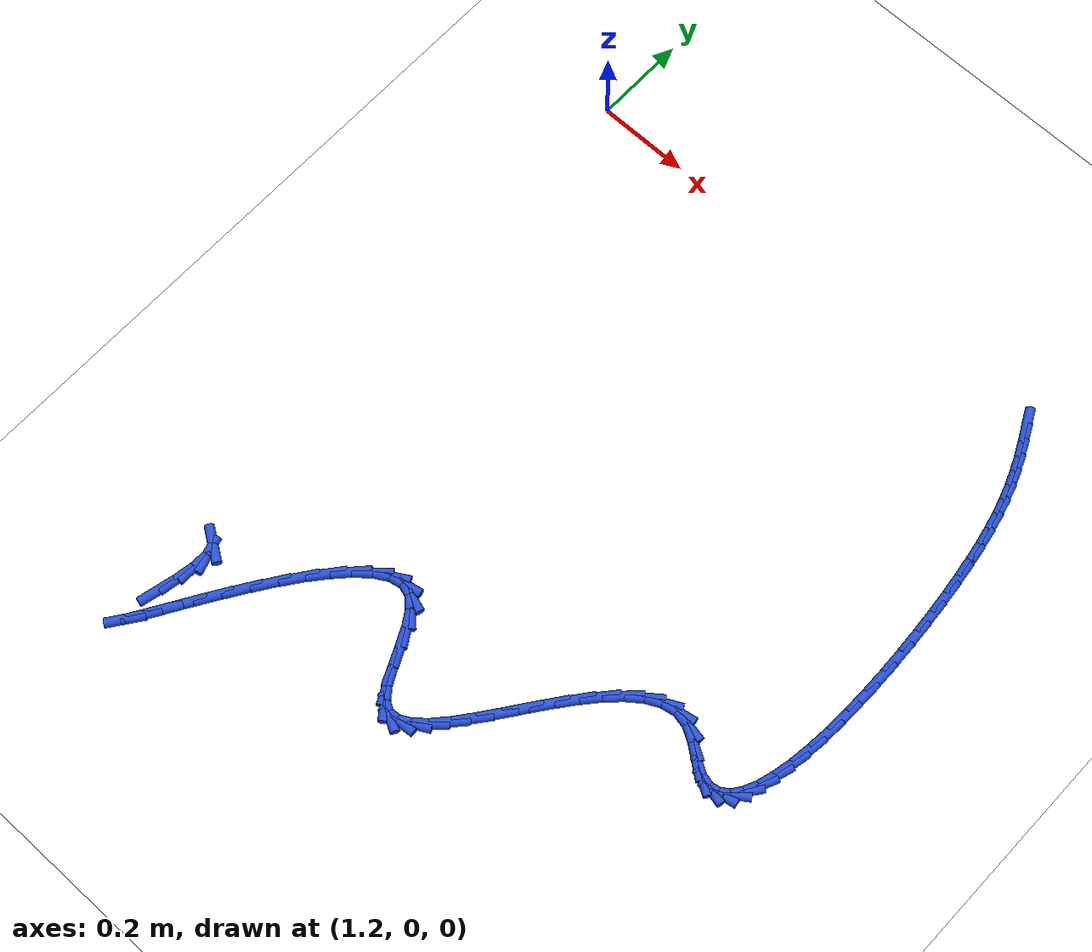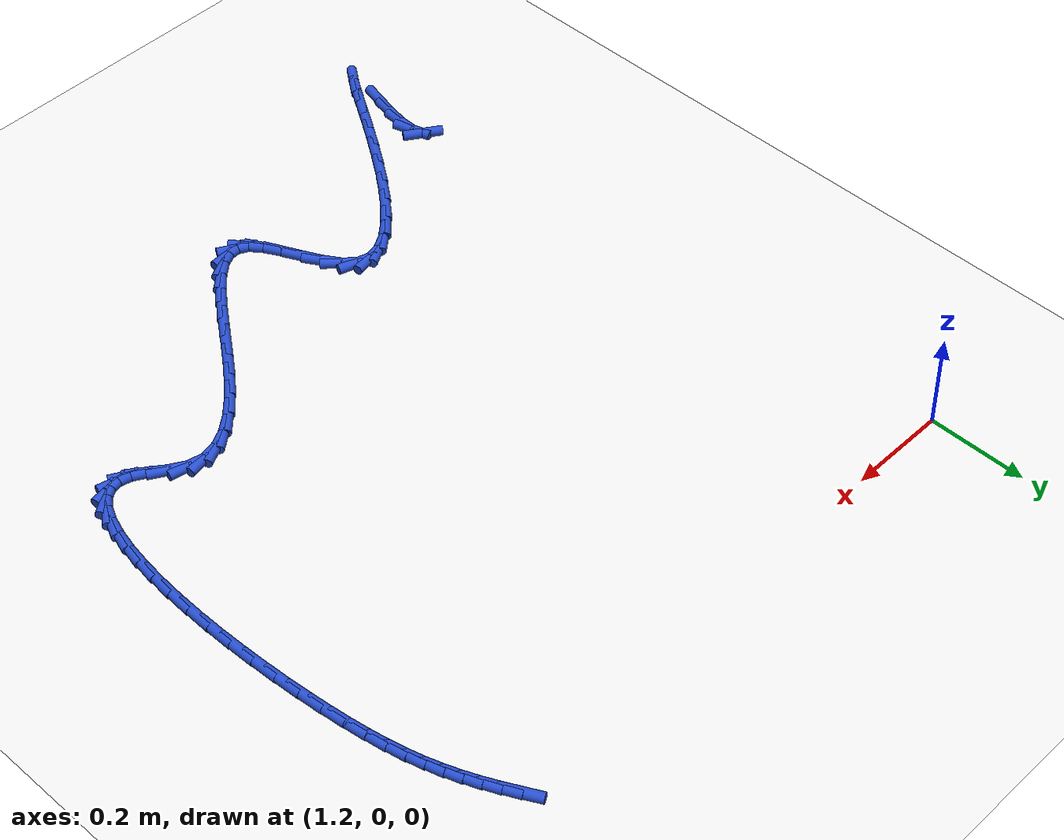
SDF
<sdf version="1.6">
 <world name="default">
  <model name="ground_plane">
   <static>1</static>
   <link name="link">
    <collision name="collision">
     <geometry><plane><normal>0 0 1</normal><size>100 100</size></plane></geometry>
     <surface><friction><ode><mu>100</mu><mu2>50</mu2></ode></friction></surface>
    </collision>
    <visual name="visual">
     <cast_shadows>0</cast_shadows>
     <geometry><plane><normal>0 0 1</normal><size>100 100</size></plane></geometry>
     <material>
      <script><uri>file://media/materials/scripts/gazebo.material</uri><name>Gazebo/WhiteGlow</name></script>
     </material>
    </visual>
   </link>
  </model>
  <model name="line">
   <link name="link_141">
    <pose>2.2784514607474446 0.02813323388887385 0.01 0 1.57 -1.0860343910763162</pose>
    <collision name="collision">
     <geometry><cylinder><radius>0.01</radius><length>0.08</length></cylinder></geometry>
    </collision>
    <visual name="visual">
     <material>
      <script><name>Gazebo/Blue</name><uri>file://media/materials/scripts/gazebo.material</uri></script>
     </material>
     <geometry><cylinder><radius>0.01</radius><length>0.08</length></cylinder></geometry>
    </visual>
   </link>
   <link name="link_142">
    <pose>2.2945918916165278 -0.0025124639639989097 0.01 0 1.57 -1.1183088455626469</pose>
    <collision name="collision">
     <geometry><cylinder><radius>0.01</radius><length>0.08</length></cylinder></geometry>
    </collision>
    <visual name="visual">
     <material>
      <script><name>Gazebo/Blue</name><uri>file://media/materials/scripts/gazebo.material</uri></script>
     </material>
     <geometry><cylinder><radius>0.01</radius><length>0.08</length></cylinder></geometry>
    </visual>
   </link>
   <link name="link_143">
    <pose>2.309053181064443 -0.032260449607028355 0.01 0 1.57 -1.1569120215775426</pose>
    <collision name="collision">
     <geometry><cylinder><radius>0.01</radius><length>0.08</length></cylinder></geometry>
    </collision>
    <visual name="visual">
     <material>
      <script><name>Gazebo/Blue</name><uri>file://media/materials/scripts/gazebo.material</uri></script>
     </material>
     <geometry><cylinder><radius>0.01</radius><length>0.08</length></cylinder></geometry>
    </visual>
   </link>
   <link name="link_144">
    <pose>2.321971667031606 -0.061670300538566064 0.01 0 1.57 -1.2002351775490423</pose>
    <collision name="collision">
     <geometry><cylinder><radius>0.01</radius><length>0.08</length></cylinder></geometry>
    </collision>
    <visual name="visual">
     <material>
      <script><name>Gazebo/Blue</name><uri>file://media/materials/scripts/gazebo.material</uri></script>
     </material>
     <geometry><cylinder><radius>0.01</radius><length>0.08</length></cylinder></geometry>
    </visual>
   </link>
   <link name="link_145">
    <pose>2.3334836874584317 -0.09130159425696374 0.01 0 1.57 -1.245957803546816</pose>
    <collision name="collision">
     <geometry><cylinder><radius>0.01</radius><length>0.08</length></cylinder></geometry>
    </collision>
    <visual name="visual">
     <material>
      <script><name>Gazebo/Blue</name><uri>file://media/materials/scripts/gazebo.material</uri></script>
     </material>
     <geometry><cylinder><radius>0.01</radius><length>0.08</length></cylinder></geometry>
    </visual>
   </link>
   <link name="link_146">
    <pose>2.343725580285333 -0.12171390826057393 0.01 0 1.57 -1.2914533725791</pose>
    <collision name="collision">
     <geometry><cylinder><radius>0.01</radius><length>0.08</length></cylinder></geometry>
    </collision>
    <visual name="visual">
     <material>
      <script><name>Gazebo/Blue</name><uri>file://media/materials/scripts/gazebo.material</uri></script>
     </material>
     <geometry><cylinder><radius>0.01</radius><length>0.08</length></cylinder></geometry>
    </visual>
   </link>
   <link name="link_147">
    <pose>2.3528336834527264 -0.15346682004774637 0.01 0 1.57 -1.3342987932334067</pose>
    <collision name="collision">
     <geometry><cylinder><radius>0.01</radius><length>0.08</length></cylinder></geometry>
    </collision>
    <visual name="visual">
     <material>
      <script><name>Gazebo/Blue</name><uri>file://media/materials/scripts/gazebo.material</uri></script>
     </material>
     <geometry><cylinder><radius>0.01</radius><length>0.08</length></cylinder></geometry>
    </visual>
   </link>
   <link name="link_148">
    <pose>2.3609443349010255 -0.18711990711683374 0.01 0 1.57 -1.3726827764626461</pose>
    <collision name="collision">
     <geometry><cylinder><radius>0.01</radius><length>0.08</length></cylinder></geometry>
    </collision>
    <visual name="visual">
     <material>
      <script><name>Gazebo/Blue</name><uri>file://media/materials/scripts/gazebo.material</uri></script>
     </material>
     <geometry><cylinder><radius>0.01</radius><length>0.08</length></cylinder></geometry>
    </visual>
   </link>
   <link name="link_149">
    <pose>2.3681938725706435 -0.22323274696618753 0.01 0 1.57 -1.405579685635747</pose>
    <collision name="collision">
     <geometry><cylinder><radius>0.01</radius><length>0.08</length></cylinder></geometry>
    </collision>
    <visual name="visual">
     <material>
      <script><name>Gazebo/Blue</name><uri>file://media/materials/scripts/gazebo.material</uri></script>
     </material>
     <geometry><cylinder><radius>0.01</radius><length>0.08</length></cylinder></geometry>
    </visual>
   </link>
   <link name="link_150">
    <pose>2.3747186344019973 -0.26236491709415943 0.01 0 1.57 -1.4327160093327058</pose>
    <collision name="collision">
     <geometry><cylinder><radius>0.01</radius><length>0.08</length></cylinder></geometry>
    </collision>
    <visual name="visual">
     <material>
      <script><name>Gazebo/Blue</name><uri>file://media/materials/scripts/gazebo.material</uri></script>
     </material>
     <geometry><cylinder><radius>0.01</radius><length>0.08</length></cylinder></geometry>
    </visual>
   </link>
   <link name="link_151">
    <pose>2.380651872147864 -0.30506094929667876 0.01 0 1.57 -1.4554205872263488</pose>
    <collision name="collision">
     <geometry><cylinder><radius>0.01</radius><length>0.08</length></cylinder></geometry>
    </collision>
    <visual name="visual">
     <material>
      <script><name>Gazebo/Blue</name><uri>file://media/materials/scripts/gazebo.material</uri></script>
     </material>
     <geometry><cylinder><radius>0.01</radius><length>0.08</length></cylinder></geometry>
    </visual>
   </link>
   <link name="link_152">
    <pose>2.3860101042327075 -0.35129628005604385 0.01 0 1.57 -1.4762206513893845</pose>
    <collision name="collision">
     <geometry><cylinder><radius>0.01</radius><length>0.08</length></cylinder></geometry>
    </collision>
    <visual name="visual">
     <material>
      <script><name>Gazebo/Blue</name><uri>file://media/materials/scripts/gazebo.material</uri></script>
     </material>
     <geometry><cylinder><radius>0.01</radius><length>0.08</length></cylinder></geometry>
    </visual>
   </link>
   <link name="link_153">
    <pose>2.39066005781618 -0.40031608734091917 0.01 0 1.57 -1.4964539882212677</pose>
    <collision name="collision">
     <geometry><cylinder><radius>0.01</radius><length>0.08</length></cylinder></geometry>
    </collision>
    <visual name="visual">
     <material>
      <script><name>Gazebo/Blue</name><uri>file://media/materials/scripts/gazebo.material</uri></script>
     </material>
     <geometry><cylinder><radius>0.01</radius><length>0.08</length></cylinder></geometry>
    </visual>
   </link>
   <link name="link_154">
    <pose>2.3944586331510402 -0.45131764123675105 0.01 0 1.57 -1.5171096242226416</pose>
    <collision name="collision">
     <geometry><cylinder><radius>0.01</radius><length>0.08</length></cylinder></geometry>
    </collision>
    <visual name="visual">
     <material>
      <script><name>Gazebo/Blue</name><uri>file://media/materials/scripts/gazebo.material</uri></script>
     </material>
     <geometry><cylinder><radius>0.01</radius><length>0.08</length></cylinder></geometry>
    </visual>
   </link>
   <link name="link_155">
    <pose>2.3972627304900476 -0.5034982118289881 0.01 0 1.57 -1.5390980579149491</pose>
    <collision name="collision">
     <geometry><cylinder><radius>0.01</radius><length>0.08</length></cylinder></geometry>
    </collision>
    <visual name="visual">
     <material>
      <script><name>Gazebo/Blue</name><uri>file://media/materials/scripts/gazebo.material</uri></script>
     </material>
     <geometry><cylinder><radius>0.01</radius><length>0.08</length></cylinder></geometry>
    </visual>
   </link>
   <link name="link_156">
    <pose>2.3989292500859607 -0.5560550692030736 0.01 0 1.57 -1.5633949841102885</pose>
    <collision name="collision">
     <geometry><cylinder><radius>0.01</radius><length>0.08</length></cylinder></geometry>
    </collision>
    <visual name="visual">
     <material>
      <script><name>Gazebo/Blue</name><uri>file://media/materials/scripts/gazebo.material</uri></script>
     </material>
     <geometry><cylinder><radius>0.01</radius><length>0.08</length></cylinder></geometry>
    </visual>
   </link>
   <link name="link_157">
    <pose>2.399315092191538 -0.6081854834444554 0.01 0 1.57 1.5504079966483277</pose>
    <collision name="collision">
     <geometry><cylinder><radius>0.01</radius><length>0.08</length></cylinder></geometry>
    </collision>
    <visual name="visual">
     <material>
      <script><name>Gazebo/Blue</name><uri>file://media/materials/scripts/gazebo.material</uri></script>
     </material>
     <geometry><cylinder><radius>0.01</radius><length>0.08</length></cylinder></geometry>
    </visual>
   </link>
   <link name="link_158">
    <pose>2.3982771570595385 -0.6590867246385808 0.01 0 1.57 1.5175451553817199</pose>
    <collision name="collision">
     <geometry><cylinder><radius>0.01</radius><length>0.08</length></cylinder></geometry>
    </collision>
    <visual name="visual">
     <material>
      <script><name>Gazebo/Blue</name><uri>file://media/materials/scripts/gazebo.material</uri></script>
     </material>
     <geometry><cylinder><radius>0.01</radius><length>0.08</length></cylinder></geometry>
    </visual>
   </link>
   <link name="link_159">
    <pose>2.3956723449427217 -0.7079560628708961 0.01 0 1.57 1.4773403207120013</pose>
    <collision name="collision">
     <geometry><cylinder><radius>0.01</radius><length>0.08</length></cylinder></geometry>
    </collision>
    <visual name="visual">
     <material>
      <script><name>Gazebo/Blue</name><uri>file://media/materials/scripts/gazebo.material</uri></script>
     </material>
     <geometry><cylinder><radius>0.01</radius><length>0.08</length></cylinder></geometry>
    </visual>
   </link>
   <link name="link_160">
    <pose>2.391357556093846 -0.7539907682268479 0.01 0 1.57 1.4263321326792093</pose>
    <collision name="collision">
     <geometry><cylinder><radius>0.01</radius><length>0.08</length></cylinder></geometry>
    </collision>
    <visual name="visual">
     <material>
      <script><name>Gazebo/Blue</name><uri>file://media/materials/scripts/gazebo.material</uri></script>
     </material>
     <geometry><cylinder><radius>0.01</radius><length>0.08</length></cylinder></geometry>
    </visual>
   </link>
   <link name="link_161">
    <pose>2.38518969076567 -0.7963881107918828 0.01 0 1.57 1.3589387608353705</pose>
    <collision name="collision">
     <geometry><cylinder><radius>0.01</radius><length>0.08</length></cylinder></geometry>
    </collision>
    <visual name="visual">
     <material>
      <script><name>Gazebo/Blue</name><uri>file://media/materials/scripts/gazebo.material</uri></script>
     </material>
     <geometry><cylinder><radius>0.01</radius><length>0.08</length></cylinder></geometry>
    </visual>
   </link>
   <link name="link_162">
    <pose>2.377025649210953 -0.8343453606514477 0.01 0 1.57 1.265683529244872</pose>
    <collision name="collision">
     <geometry><cylinder><radius>0.01</radius><length>0.08</length></cylinder></geometry>
    </collision>
    <visual name="visual">
     <material>
      <script><name>Gazebo/Blue</name><uri>file://media/materials/scripts/gazebo.material</uri></script>
     </material>
     <geometry><cylinder><radius>0.01</radius><length>0.08</length></cylinder></geometry>
    </visual>
   </link>
   <link name="link_163">
    <pose>2.366722331682454 -0.8670597878909891 0.01 0 1.57 1.129860376330483</pose>
    <collision name="collision">
     <geometry><cylinder><radius>0.01</radius><length>0.08</length></cylinder></geometry>
    </collision>
    <visual name="visual">
     <material>
      <script><name>Gazebo/Blue</name><uri>file://media/materials/scripts/gazebo.material</uri></script>
     </material>
     <geometry><cylinder><radius>0.01</radius><length>0.08</length></cylinder></geometry>
    </visual>
   </link>
   <link name="link_164">
    <pose>2.354136638432931 -0.8937286625959544 0.01 0 1.57 0.9226064054815338</pose>
    <collision name="collision">
     <geometry><cylinder><radius>0.01</radius><length>0.08</length></cylinder></geometry>
    </collision>
    <visual name="visual">
     <material>
      <script><name>Gazebo/Blue</name><uri>file://media/materials/scripts/gazebo.material</uri></script>
     </material>
     <geometry><cylinder><radius>0.01</radius><length>0.08</length></cylinder></geometry>
    </visual>
   </link>
   <link name="link_165">
    <pose>2.3391254697151442 -0.9135492548517888 0.01 0 1.57 0.6055057453975802</pose>
    <collision name="collision">
     <geometry><cylinder><radius>0.01</radius><length>0.08</length></cylinder></geometry>
    </collision>
    <visual name="visual">
     <material>
      <script><name>Gazebo/Blue</name><uri>file://media/materials/scripts/gazebo.material</uri></script>
     </material>
     <geometry><cylinder><radius>0.01</radius><length>0.08</length></cylinder></geometry>
    </visual>
   </link>
   <link name="link_166">
    <pose>2.3215457257818515 -0.9257188347439395 0.01 0 1.57 0.1811168506352135</pose>
    <collision name="collision">
     <geometry><cylinder><radius>0.01</radius><length>0.08</length></cylinder></geometry>
    </collision>
    <visual name="visual">
     <material>
      <script><name>Gazebo/Blue</name><uri>file://media/materials/scripts/gazebo.material</uri></script>
     </material>
     <geometry><cylinder><radius>0.01</radius><length>0.08</length></cylinder></geometry>
    </visual>
   </link>
   <link name="link_167">
    <pose>2.301254306885812 -0.9294346723578528 0.01 0 1.57 -0.23495452816198104</pose>
    <collision name="collision">
     <geometry><cylinder><radius>0.01</radius><length>0.08</length></cylinder></geometry>
    </collision>
    <visual name="visual">
     <material>
      <script><name>Gazebo/Blue</name><uri>file://media/materials/scripts/gazebo.material</uri></script>
     </material>
     <geometry><cylinder><radius>0.01</radius><length>0.08</length></cylinder></geometry>
    </visual>
   </link>
   <link name="link_168">
    <pose>2.2781081132797847 -0.9238940377789764 0.01 0 1.57 -0.5359424123271206</pose>
    <collision name="collision">
     <geometry><cylinder><radius>0.01</radius><length>0.08</length></cylinder></geometry>
    </collision>
    <visual name="visual">
     <material>
      <script><name>Gazebo/Blue</name><uri>file://media/materials/scripts/gazebo.material</uri></script>
     </material>
     <geometry><cylinder><radius>0.01</radius><length>0.08</length></cylinder></geometry>
    </visual>
   </link>
   <link name="link_169">
    <pose>2.251972997912899 -0.9083716758169059 0.01 0 1.57 -0.6505381265790809</pose>
    <collision name="collision">
     <geometry><cylinder><radius>0.01</radius><length>0.08</length></cylinder></geometry>
    </collision>
    <visual name="visual">
     <material>
      <script><name>Gazebo/Blue</name><uri>file://media/materials/scripts/gazebo.material</uri></script>
     </material>
     <geometry><cylinder><radius>0.01</radius><length>0.08</length></cylinder></geometry>
    </visual>
   </link>
   <link name="link_170">
    <pose>2.2232168312960088 -0.8864866841446776 0.01 0 1.57 -0.5383438115056344</pose>
    <collision name="collision">
     <geometry><cylinder><radius>0.01</radius><length>0.08</length></cylinder></geometry>
    </collision>
    <visual name="visual">
     <material>
      <script><name>Gazebo/Blue</name><uri>file://media/materials/scripts/gazebo.material</uri></script>
     </material>
     <geometry><cylinder><radius>0.01</radius><length>0.08</length></cylinder></geometry>
    </visual>
   </link>
   <link name="link_171">
    <pose>2.1929659499885528 -0.8684214455847832 0.01 0 1.57 -0.19717803153001814</pose>
    <collision name="collision">
     <geometry><cylinder><radius>0.01</radius><length>0.08</length></cylinder></geometry>
    </collision>
    <visual name="visual">
     <material>
      <script><name>Gazebo/Blue</name><uri>file://media/materials/scripts/gazebo.material</uri></script>
     </material>
     <geometry><cylinder><radius>0.01</radius><length>0.08</length></cylinder></geometry>
    </visual>
   </link>
   <link name="link_172">
    <pose>2.16218797042805 -0.8622728122553506 0.01 0 1.57 0.1798210085249749</pose>
    <collision name="collision">
     <geometry><cylinder><radius>0.01</radius><length>0.08</length></cylinder></geometry>
    </collision>
    <visual name="visual">
     <material>
      <script><name>Gazebo/Blue</name><uri>file://media/materials/scripts/gazebo.material</uri></script>
     </material>
     <geometry><cylinder><radius>0.01</radius><length>0.08</length></cylinder></geometry>
    </visual>
   </link>
   <link name="link_173">
    <pose>2.1311573698296975 -0.867913698089773 0.01 0 1.57 0.4669528825546204</pose>
    <collision name="collision">
     <geometry><cylinder><radius>0.01</radius><length>0.08</length></cylinder></geometry>
    </collision>
    <visual name="visual">
     <material>
      <script><name>Gazebo/Blue</name><uri>file://media/materials/scripts/gazebo.material</uri></script>
     </material>
     <geometry><cylinder><radius>0.01</radius><length>0.08</length></cylinder></geometry>
    </visual>
   </link>
   <link name="link_174">
    <pose>2.100013559443911 -0.8836144902714421 0.01 0 1.57 0.6576000117937096</pose>
    <collision name="collision">
     <geometry><cylinder><radius>0.01</radius><length>0.08</length></cylinder></geometry>
    </collision>
    <visual name="visual">
     <material>
      <script><name>Gazebo/Blue</name><uri>file://media/materials/scripts/gazebo.material</uri></script>
     </material>
     <geometry><cylinder><radius>0.01</radius><length>0.08</length></cylinder></geometry>
    </visual>
   </link>
   <link name="link_175">
    <pose>2.0688959505211058 -0.9076455759837498 0.01 0 1.57 0.7801983041621872</pose>
    <collision name="collision">
     <geometry><cylinder><radius>0.01</radius><length>0.08</length></cylinder></geometry>
    </collision>
    <visual name="visual">
     <material>
      <script><name>Gazebo/Blue</name><uri>file://media/materials/scripts/gazebo.material</uri></script>
     </material>
     <geometry><cylinder><radius>0.01</radius><length>0.08</length></cylinder></geometry>
    </visual>
   </link>
   <link name="link_176">
    <pose>2.037943954311697 -0.9382773424100882 0.01 0 1.57 0.8586737832409109</pose>
    <collision name="collision">
     <geometry><cylinder><radius>0.01</radius><length>0.08</length></cylinder></geometry>
    </collision>
    <visual name="visual">
     <material>
      <script><name>Gazebo/Blue</name><uri>file://media/materials/scripts/gazebo.material</uri></script>
     </material>
     <geometry><cylinder><radius>0.01</radius><length>0.08</length></cylinder></geometry>
    </visual>
   </link>
   <link name="link_177">
    <pose>2.007296982066098 -0.9737801767338489 0.01 0 1.57 0.9074055781459622</pose>
    <collision name="collision">
     <geometry><cylinder><radius>0.01</radius><length>0.08</length></cylinder></geometry>
    </collision>
    <visual name="visual">
     <material>
      <script><name>Gazebo/Blue</name><uri>file://media/materials/scripts/gazebo.material</uri></script>
     </material>
     <geometry><cylinder><radius>0.01</radius><length>0.08</length></cylinder></geometry>
    </visual>
   </link>
   <link name="link_178">
    <pose>1.9770944450347245 -1.012424466138424 0.01 0 1.57 0.9340946501942989</pose>
    <collision name="collision">
     <geometry><cylinder><radius>0.01</radius><length>0.08</length></cylinder></geometry>
    </collision>
    <visual name="visual">
     <material>
      <script><name>Gazebo/Blue</name><uri>file://media/materials/scripts/gazebo.material</uri></script>
     </material>
     <geometry><cylinder><radius>0.01</radius><length>0.08</length></cylinder></geometry>
    </visual>
   </link>
   <link name="link_179">
    <pose>1.9474757544679917 -1.0524805978072058 0.01 0 1.57 0.942085524155461</pose>
    <collision name="collision">
     <geometry><cylinder><radius>0.01</radius><length>0.08</length></cylinder></geometry>
    </collision>
    <visual name="visual">
     <material>
      <script><name>Gazebo/Blue</name><uri>file://media/materials/scripts/gazebo.material</uri></script>
     </material>
     <geometry><cylinder><radius>0.01</radius><length>0.08</length></cylinder></geometry>
    </visual>
   </link>
   <link name="link_180">
    <pose>1.918580321616313 -1.0922189589235858 0.01 0 1.57 0.9313055382547267</pose>
    <collision name="collision">
     <geometry><cylinder><radius>0.01</radius><length>0.08</length></cylinder></geometry>
    </collision>
    <visual name="visual">
     <material>
      <script><name>Gazebo/Blue</name><uri>file://media/materials/scripts/gazebo.material</uri></script>
     </material>
     <geometry><cylinder><radius>0.01</radius><length>0.08</length></cylinder></geometry>
    </visual>
   </link>
   <link name="link_181">
    <pose>1.890547557730104 -1.1299099366709573 0.01 0 1.57 0.8978649656332846</pose>
    <collision name="collision">
     <geometry><cylinder><radius>0.01</radius><length>0.08</length></cylinder></geometry>
    </collision>
    <visual name="visual">
     <material>
      <script><name>Gazebo/Blue</name><uri>file://media/materials/scripts/gazebo.material</uri></script>
     </material>
     <geometry><cylinder><radius>0.01</radius><length>0.08</length></cylinder></geometry>
    </visual>
   </link>
   <link name="link_182">
    <pose>1.8635168740597805 -1.1638239182327097 0.01 0 1.57 0.8317432168145761</pose>
    <collision name="collision">
     <geometry><cylinder><radius>0.01</radius><length>0.08</length></cylinder></geometry>
    </collision>
    <visual name="visual">
     <material>
      <script><name>Gazebo/Blue</name><uri>file://media/materials/scripts/gazebo.material</uri></script>
     </material>
     <geometry><cylinder><radius>0.01</radius><length>0.08</length></cylinder></geometry>
    </visual>
   </link>
   <link name="link_183">
    <pose>1.8376276818557564 -1.1922312907922363 0.01 0 1.57 0.7104583645285033</pose>
    <collision name="collision">
     <geometry><cylinder><radius>0.01</radius><length>0.08</length></cylinder></geometry>
    </collision>
    <visual name="visual">
     <material>
      <script><name>Gazebo/Blue</name><uri>file://media/materials/scripts/gazebo.material</uri></script>
     </material>
     <geometry><cylinder><radius>0.01</radius><length>0.08</length></cylinder></geometry>
    </visual>
   </link>
   <link name="link_184">
    <pose>1.8130193923684468 -1.2134024415329292 0.01 0 1.57 0.4845156998602907</pose>
    <collision name="collision">
     <geometry><cylinder><radius>0.01</radius><length>0.08</length></cylinder></geometry>
    </collision>
    <visual name="visual">
     <material>
      <script><name>Gazebo/Blue</name><uri>file://media/materials/scripts/gazebo.material</uri></script>
     </material>
     <geometry><cylinder><radius>0.01</radius><length>0.08</length></cylinder></geometry>
    </visual>
   </link>
   <link name="link_185">
    <pose>1.7898314168482663 -1.2256077576381803 0.01 0 1.57 0.06969694858098882</pose>
    <collision name="collision">
     <geometry><cylinder><radius>0.01</radius><length>0.08</length></cylinder></geometry>
    </collision>
    <visual name="visual">
     <material>
      <script><name>Gazebo/Blue</name><uri>file://media/materials/scripts/gazebo.material</uri></script>
     </material>
     <geometry><cylinder><radius>0.01</radius><length>0.08</length></cylinder></geometry>
    </visual>
   </link>
   <link name="link_186">
    <pose>1.76820316654563 -1.2271176262913814 0.01 0 1.57 -0.5010518193742346</pose>
    <collision name="collision">
     <geometry><cylinder><radius>0.01</radius><length>0.08</length></cylinder></geometry>
    </collision>
    <visual name="visual">
     <material>
      <script><name>Gazebo/Blue</name><uri>file://media/materials/scripts/gazebo.material</uri></script>
     </material>
     <geometry><cylinder><radius>0.01</radius><length>0.08</length></cylinder></geometry>
    </visual>
   </link>
   <link name="link_187">
    <pose>1.7482739644953504 -1.2162030200010794 0.01 0 1.57 -0.9137045335575279</pose>
    <collision name="collision">
     <geometry><cylinder><radius>0.01</radius><length>0.08</length></cylinder></geometry>
    </collision>
    <visual name="visual">
     <material>
      <script><name>Gazebo/Blue</name><uri>file://media/materials/scripts/gazebo.material</uri></script>
     </material>
     <geometry><cylinder><radius>0.01</radius><length>0.08</length></cylinder></geometry>
    </visual>
   </link>
   <link name="link_188">
    <pose>1.7299791538873022 -1.1924883513948592 0.01 0 1.57 -1.0819707317044849</pose>
    <collision name="collision">
     <geometry><cylinder><radius>0.01</radius><length>0.08</length></cylinder></geometry>
    </collision>
    <visual name="visual">
     <material>
      <script><name>Gazebo/Blue</name><uri>file://media/materials/scripts/gazebo.material</uri></script>
     </material>
     <geometry><cylinder><radius>0.01</radius><length>0.08</length></cylinder></geometry>
    </visual>
   </link>
   <link name="link_189">
    <pose>1.7126146225640135 -1.1598409254394484 0.01 0 1.57 -1.133035129415834</pose>
    <collision name="collision">
     <geometry><cylinder><radius>0.01</radius><length>0.08</length></cylinder></geometry>
    </collision>
    <visual name="visual">
     <material>
      <script><name>Gazebo/Blue</name><uri>file://media/materials/scripts/gazebo.material</uri></script>
     </material>
     <geometry><cylinder><radius>0.01</radius><length>0.08</length></cylinder></geometry>
    </visual>
   </link>
   <link name="link_190">
    <pose>1.6953512849231147 -1.1229572666462115 0.01 0 1.57 -1.112002465247935</pose>
    <collision name="collision">
     <geometry><cylinder><radius>0.01</radius><length>0.08</length></cylinder></geometry>
    </collision>
    <visual name="visual">
     <material>
      <script><name>Gazebo/Blue</name><uri>file://media/materials/scripts/gazebo.material</uri></script>
     </material>
     <geometry><cylinder><radius>0.01</radius><length>0.08</length></cylinder></geometry>
    </visual>
   </link>
   <link name="link_191">
    <pose>1.67736005536224 -1.0865338995265184 0.01 0 1.57 -1.0120449389304118</pose>
    <collision name="collision">
     <geometry><cylinder><radius>0.01</radius><length>0.08</length></cylinder></geometry>
    </collision>
    <visual name="visual">
     <material>
      <script><name>Gazebo/Blue</name><uri>file://media/materials/scripts/gazebo.material</uri></script>
     </material>
     <geometry><cylinder><radius>0.01</radius><length>0.08</length></cylinder></geometry>
    </visual>
   </link>
   <link name="link_192">
    <pose>1.657811848279021 -1.0552673485917339 0.01 0 1.57 -0.7733782058434266</pose>
    <collision name="collision">
     <geometry><cylinder><radius>0.01</radius><length>0.08</length></cylinder></geometry>
    </collision>
    <visual name="visual">
     <material>
      <script><name>Gazebo/Blue</name><uri>file://media/materials/scripts/gazebo.material</uri></script>
     </material>
     <geometry><cylinder><radius>0.01</radius><length>0.08</length></cylinder></geometry>
    </visual>
   </link>
   <link name="link_193">
    <pose>1.6358775780710892 -1.0338541383532243 0.01 0 1.57 -0.2960745617178973</pose>
    <collision name="collision">
     <geometry><cylinder><radius>0.01</radius><length>0.08</length></cylinder></geometry>
    </collision>
    <visual name="visual">
     <material>
      <script><name>Gazebo/Blue</name><uri>file://media/materials/scripts/gazebo.material</uri></script>
     </material>
     <geometry><cylinder><radius>0.01</radius><length>0.08</length></cylinder></geometry>
    </visual>
   </link>
   <link name="link_194">
    <pose>1.6108943067545012 -1.0262332316593634 0.01 0 1.57 0.20565710135866544</pose>
    <collision name="collision">
     <geometry><cylinder><radius>0.01</radius><length>0.08</length></cylinder></geometry>
    </collision>
    <visual name="visual">
     <material>
      <script><name>Gazebo/Blue</name><uri>file://media/materials/scripts/gazebo.material</uri></script>
     </material>
     <geometry><cylinder><radius>0.01</radius><length>0.08</length></cylinder></geometry>
    </visual>
   </link>
   <link name="link_195">
    <pose>1.583147013907894 -1.0320214950690572 0.01 0 1.57 0.5242625984897826</pose>
    <collision name="collision">
     <geometry><cylinder><radius>0.01</radius><length>0.08</length></cylinder></geometry>
    </collision>
    <visual name="visual">
     <material>
      <script><name>Gazebo/Blue</name><uri>file://media/materials/scripts/gazebo.material</uri></script>
     </material>
     <geometry><cylinder><radius>0.01</radius><length>0.08</length></cylinder></geometry>
    </visual>
   </link>
   <link name="link_196">
    <pose>1.5532563339441245 -1.049305353496522 0.01 0 1.57 0.707498961000234</pose>
    <collision name="collision">
     <geometry><cylinder><radius>0.01</radius><length>0.08</length></cylinder></geometry>
    </collision>
    <visual name="visual">
     <material>
      <script><name>Gazebo/Blue</name><uri>file://media/materials/scripts/gazebo.material</uri></script>
     </material>
     <geometry><cylinder><radius>0.01</radius><length>0.08</length></cylinder></geometry>
    </visual>
   </link>
   <link name="link_197">
    <pose>1.52184329266942 -1.076169447270576 0.01 0 1.57 0.818517135317724</pose>
    <collision name="collision">
     <geometry><cylinder><radius>0.01</radius><length>0.08</length></cylinder></geometry>
    </collision>
    <visual name="visual">
     <material>
      <script><name>Gazebo/Blue</name><uri>file://media/materials/scripts/gazebo.material</uri></script>
     </material>
     <geometry><cylinder><radius>0.01</radius><length>0.08</length></cylinder></geometry>
    </visual>
   </link>
   <link name="link_198">
    <pose>1.4895289158900085 -1.1106984167200378 0.01 0 1.57 0.8904507050373497</pose>
    <collision name="collision">
     <geometry><cylinder><radius>0.01</radius><length>0.08</length></cylinder></geometry>
    </collision>
    <visual name="visual">
     <material>
      <script><name>Gazebo/Blue</name><uri>file://media/materials/scripts/gazebo.material</uri></script>
     </material>
     <geometry><cylinder><radius>0.01</radius><length>0.08</length></cylinder></geometry>
    </visual>
   </link>
   <link name="link_199">
    <pose>1.4569342294121161 -1.1509769021737266 0.01 0 1.57 0.9394538141181953</pose>
    <collision name="collision">
     <geometry><cylinder><radius>0.01</radius><length>0.08</length></cylinder></geometry>
    </collision>
    <visual name="visual">
     <material>
      <script><name>Gazebo/Blue</name><uri>file://media/materials/scripts/gazebo.material</uri></script>
     </material>
     <geometry><cylinder><radius>0.01</radius><length>0.08</length></cylinder></geometry>
    </visual>
   </link>
   <link name="link_200">
    <pose>1.4246802590419725 -1.1950895439604583 0.01 0 1.57 0.9737556019649254</pose>
    <collision name="collision">
     <geometry><cylinder><radius>0.01</radius><length>0.08</length></cylinder></geometry>
    </collision>
    <visual name="visual">
     <material>
      <script><name>Gazebo/Blue</name><uri>file://media/materials/scripts/gazebo.material</uri></script>
     </material>
     <geometry><cylinder><radius>0.01</radius><length>0.08</length></cylinder></geometry>
    </visual>
   </link>
   <link name="link_201">
    <pose>1.3933880305858042 -1.241120982409052 0.01 0 1.57 0.9976838531460227</pose>
    <collision name="collision">
     <geometry><cylinder><radius>0.01</radius><length>0.08</length></cylinder></geometry>
    </collision>
    <visual name="visual">
     <material>
      <script><name>Gazebo/Blue</name><uri>file://media/materials/scripts/gazebo.material</uri></script>
     </material>
     <geometry><cylinder><radius>0.01</radius><length>0.08</length></cylinder></geometry>
    </visual>
   </link>
   <link name="link_202">
    <pose>1.3636785698498395 -1.2871558578483264 0.01 0 1.57 1.0133578921442041</pose>
    <collision name="collision">
     <geometry><cylinder><radius>0.01</radius><length>0.08</length></cylinder></geometry>
    </collision>
    <visual name="visual">
     <material>
      <script><name>Gazebo/Blue</name><uri>file://media/materials/scripts/gazebo.material</uri></script>
     </material>
     <geometry><cylinder><radius>0.01</radius><length>0.08</length></cylinder></geometry>
    </visual>
   </link>
   <link name="link_203">
    <pose>1.3361729026403055 -1.3312788106070998 0.01 0 1.57 1.0212408293363773</pose>
    <collision name="collision">
     <geometry><cylinder><radius>0.01</radius><length>0.08</length></cylinder></geometry>
    </collision>
    <visual name="visual">
     <material>
      <script><name>Gazebo/Blue</name><uri>file://media/materials/scripts/gazebo.material</uri></script>
     </material>
     <geometry><cylinder><radius>0.01</radius><length>0.08</length></cylinder></geometry>
    </visual>
   </link>
   <link name="link_204">
    <pose>1.31149205476343 -1.37157448101419 0.01 0 1.57 1.0197377094583677</pose>
    <collision name="collision">
     <geometry><cylinder><radius>0.01</radius><length>0.08</length></cylinder></geometry>
    </collision>
    <visual name="visual">
     <material>
      <script><name>Gazebo/Blue</name><uri>file://media/materials/scripts/gazebo.material</uri></script>
     </material>
     <geometry><cylinder><radius>0.01</radius><length>0.08</length></cylinder></geometry>
    </visual>
   </link>
   <link name="link_205">
    <pose>1.2902570520254404 -1.406127509398416 0.01 0 1.57 1.002662707093823</pose>
    <collision name="collision">
     <geometry><cylinder><radius>0.01</radius><length>0.08</length></cylinder></geometry>
    </collision>
    <visual name="visual">
     <material>
      <script><name>Gazebo/Blue</name><uri>file://media/materials/scripts/gazebo.material</uri></script>
     </material>
     <geometry><cylinder><radius>0.01</radius><length>0.08</length></cylinder></geometry>
    </visual>
   </link>
   <link name="link_206">
    <pose>1.273088920232564 -1.4330225360885949 0.01 0 1.57 0.9464450013200691</pose>
    <collision name="collision">
     <geometry><cylinder><radius>0.01</radius><length>0.08</length></cylinder></geometry>
    </collision>
    <visual name="visual">
     <material>
      <script><name>Gazebo/Blue</name><uri>file://media/materials/scripts/gazebo.material</uri></script>
     </material>
     <geometry><cylinder><radius>0.01</radius><length>0.08</length></cylinder></geometry>
    </visual>
   </link>
   <link name="link_212">
    <pose>1.2770566036919557 -1.3533279503676847 0.01 0 1.57 1.3366595399514316</pose>
    <collision name="collision">
     <geometry><cylinder><radius>0.01</radius><length>0.08</length></cylinder></geometry>
    </collision>
    <visual name="visual">
     <material>
      <script><name>Gazebo/Blue</name><uri>file://media/materials/scripts/gazebo.material</uri></script>
     </material>
     <geometry><cylinder><radius>0.01</radius><length>0.08</length></cylinder></geometry>
    </visual>
   </link>
   <link name="link_213">
    <pose>1.2871421469091944 -1.3110425425036873 0.01 0 1.57 1.4025519299682558</pose>
    <collision name="collision">
     <geometry><cylinder><radius>0.01</radius><length>0.08</length></cylinder></geometry>
    </collision>
    <visual name="visual">
     <material>
      <script><name>Gazebo/Blue</name><uri>file://media/materials/scripts/gazebo.material</uri></script>
     </material>
     <geometry><cylinder><radius>0.01</radius><length>0.08</length></cylinder></geometry>
    </visual>
   </link>
   <link name="link_214">
    <pose>1.2939492287854455 -1.2709655296274205 0.01 0 1.57 1.540196188269273</pose>
    <collision name="collision">
     <geometry><cylinder><radius>0.01</radius><length>0.08</length></cylinder></geometry>
    </collision>
    <visual name="visual">
     <material>
      <script><name>Gazebo/Blue</name><uri>file://media/materials/scripts/gazebo.material</uri></script>
     </material>
     <geometry><cylinder><radius>0.01</radius><length>0.08</length></cylinder></geometry>
    </visual>
   </link>
   <link name="link_215">
    <pose>1.2949711559688866 -1.2375797919820801 0.01 0 1.57 -1.2618957700928843</pose>
    <collision name="collision">
     <geometry><cylinder><radius>0.01</radius><length>0.08</length></cylinder></geometry>
    </collision>
    <visual name="visual">
     <material>
      <script><name>Gazebo/Blue</name><uri>file://media/materials/scripts/gazebo.material</uri></script>
     </material>
     <geometry><cylinder><radius>0.01</radius><length>0.08</length></cylinder></geometry>
    </visual>
   </link>
   <link name="link_216">
    <pose>1.287817958049711 -1.2151641023423254 0.01 0 1.57 -0.5889118562903157</pose>
    <collision name="collision">
     <geometry><cylinder><radius>0.01</radius><length>0.08</length></cylinder></geometry>
    </collision>
    <visual name="visual">
     <material>
      <script><name>Gazebo/Blue</name><uri>file://media/materials/scripts/gazebo.material</uri></script>
     </material>
     <geometry><cylinder><radius>0.01</radius><length>0.08</length></cylinder></geometry>
    </visual>
   </link>
  </model>
 </world>
</sdf>
